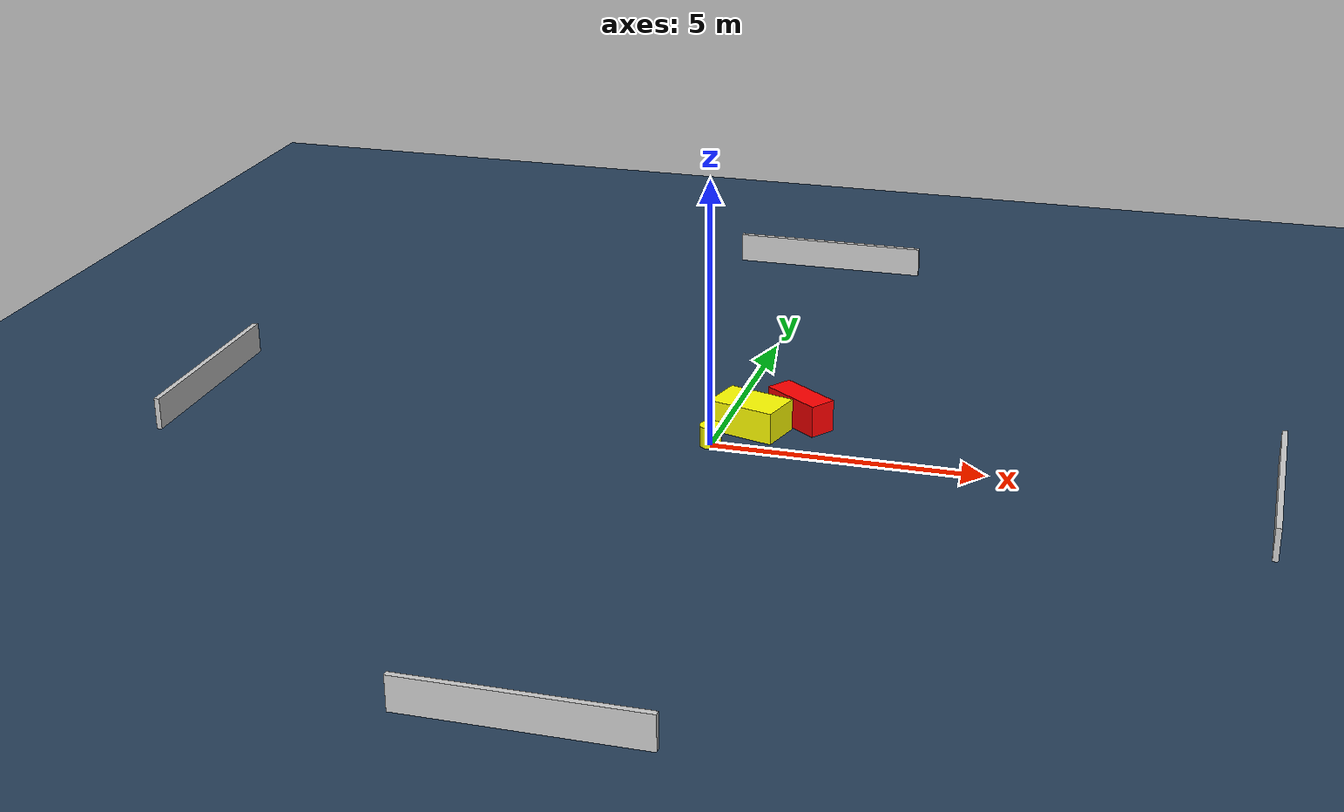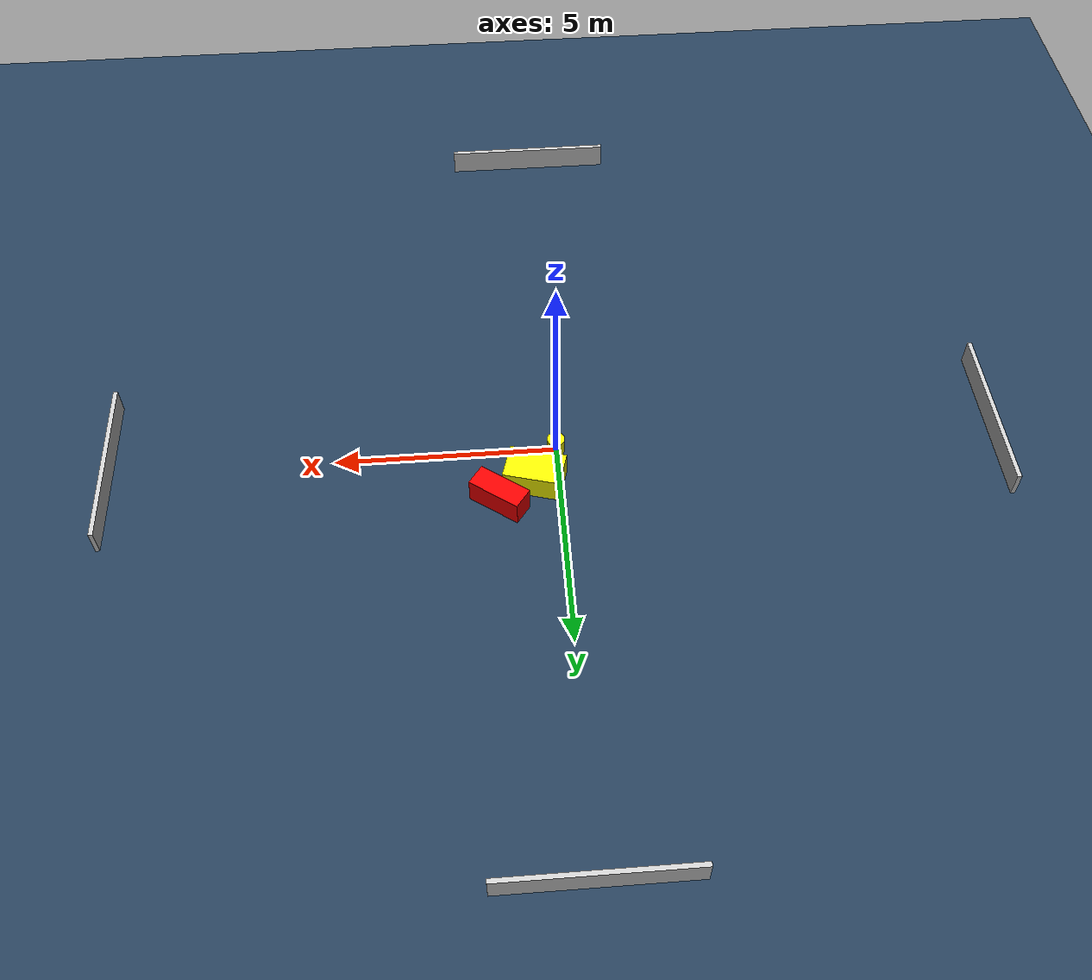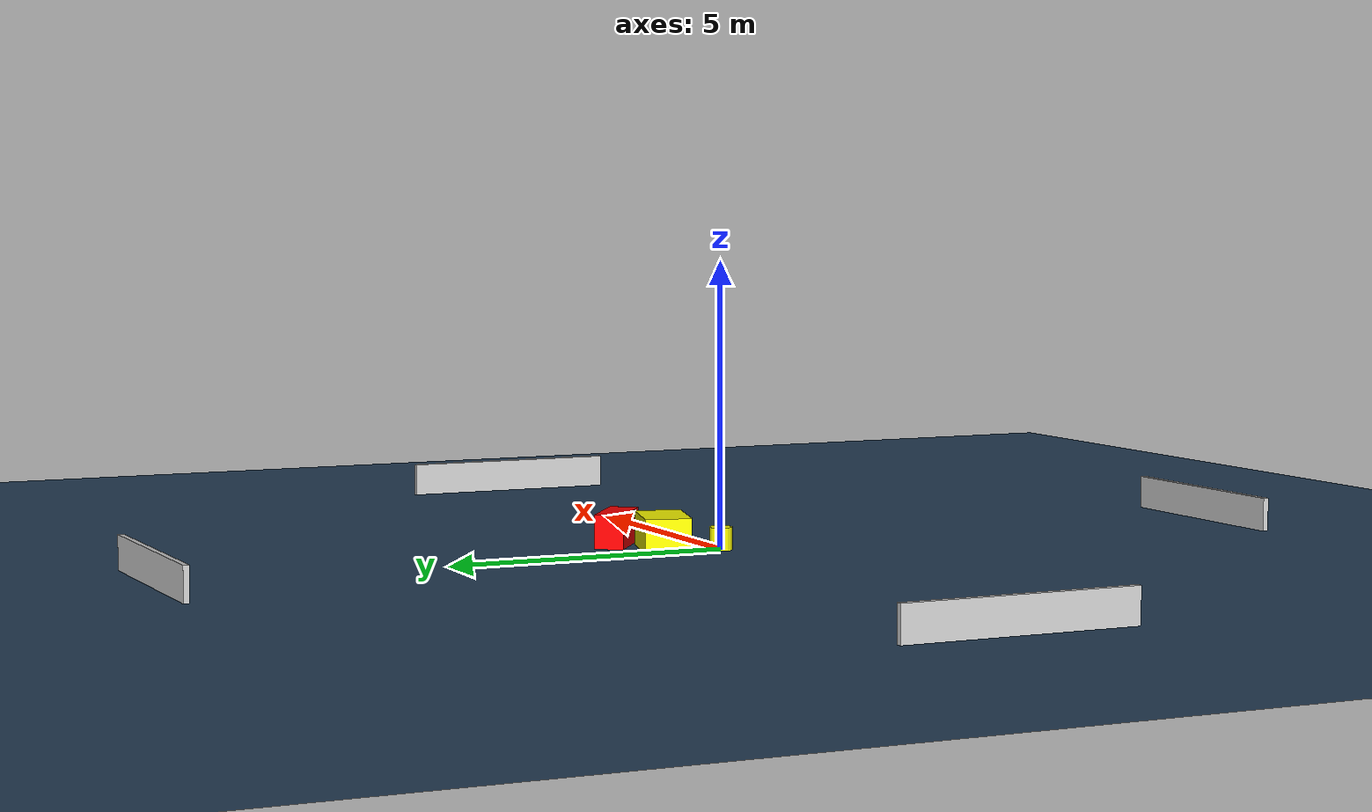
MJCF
<?xml version="1.0" ?>
<mujoco model="generated_environment">
  <option timestep="0.01" integrator="RK4" cone="elliptic"/>
  <default>
    <geom density="1"/>
  </default>
  <asset>
    <texture builtin="gradient" height="3072" name="skybox" rgb1="0.3 0.5 0.7" rgb2="0 0 0" type="skybox" width="512"/>
    <texture builtin="checker" height="300" name="groundplane" rgb1="0.2 0.3 0.4" rgb2="0.1 0.2 0.3" type="2d" width="300"/>
    <material name="groundplane" reflectance="0.2" texrepeat="5 5" texture="groundplane"/>
  </asset>
  <worldbody>
    <light dir="0 0 -1" directional="true" pos="0 0 1.5"/>
    <geom condim="3" friction="0.5 0.005 0.001" material="groundplane" name="floor" pos="0 0 0" size="0 0 0.05" type="plane"/>
    <body name="walls">
      <geom name="wall_1" condim="4" pos="-10.0 0.0 0.3" rgba="0.800000011920929 0.800000011920929 0.800000011920929 1.0" size="0.05 2.0 0.3" type="box"/>
      <geom name="wall_2" condim="4" pos="10.0 0.0 0.3" rgba="0.800000011920929 0.800000011920929 0.800000011920929 1.0" size="0.05 2.0 0.3" type="box"/>
      <geom name="wall_3" condim="4" pos="0.0 -10.0 0.3" rgba="0.800000011920929 0.800000011920929 0.800000011920929 1.0" size="2.0 0.05 0.3" type="box"/>
      <geom name="wall_4" condim="4" pos="0.0 10.0 0.3" rgba="0.800000011920929 0.800000011920929 0.800000011920929 1.0" size="2.0 0.05 0.3" type="box"/>
    </body>
    <body name="robot">
      <joint name="joint_x" type="slide" pos="0 0 0" axis="1 0 0"/>
      <joint name="joint_y" type="slide" pos="0 0 0" axis="0 1 0"/>
      <geom name="robot" type="cylinder" pos="0.0 0.0 0.2" size="0.2 0.2 0.0" mass="5.0" friction="1.0 0.005 0.0001" condim="4" rgba="1.0 1.0 0.0 1.0"/>
    </body>
    <body name="obstacle_1_movable">
      <geom name="obstacle_1_movable" condim="4" pos="0.5313577787612277 0.8528993035529268 0.3" euler="0 0 74.34337841511623" friction="0.0 0.005 0.001" rgba="1.0 1.0 0.0 1.0" size="0.4083858553359176 0.6434014359664932 0.3" type="box" mass="0.1"/>
      <joint type="free"/>
    </body>
    <body name="obstacle_2_static">
      <geom name="obstacle_2_static" condim="4" pos="1.340518597648808 1.3814691345018868 0.3" euler="0 0 323.85014386485136" friction="0.0 0.005 0.001" rgba="1.0 0.0 0.0 1.0" size="0.6259394351460671 0.2557800820011926 0.3" type="box"/>
    </body>
  </worldbody>
  <actuator>
    <motor name="actuator_x" joint="joint_x" gear="1" ctrlrange="-1 1"/>
    <motor name="actuator_y" joint="joint_y" gear="1" ctrlrange="-1 1"/>
  </actuator>
</mujoco>
